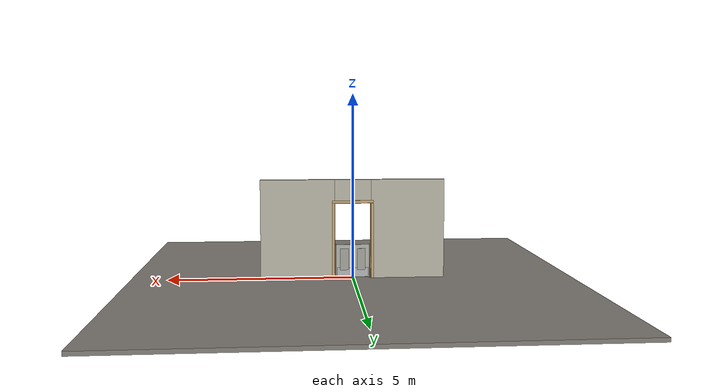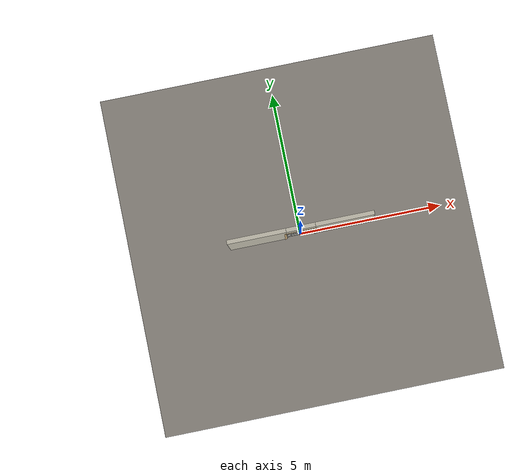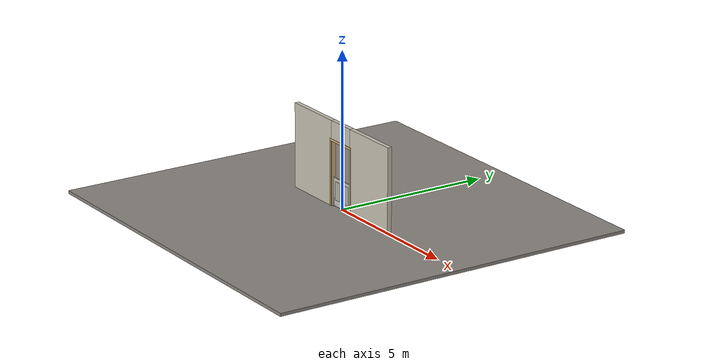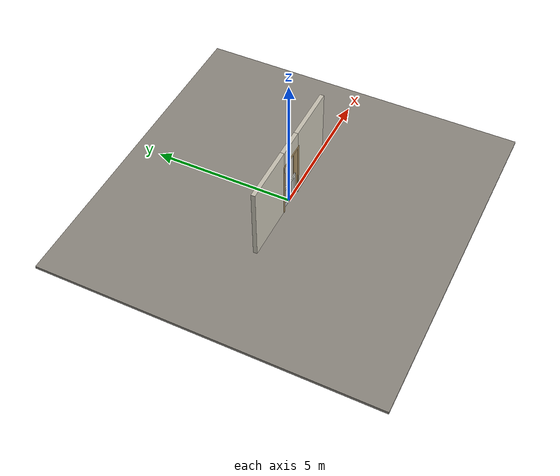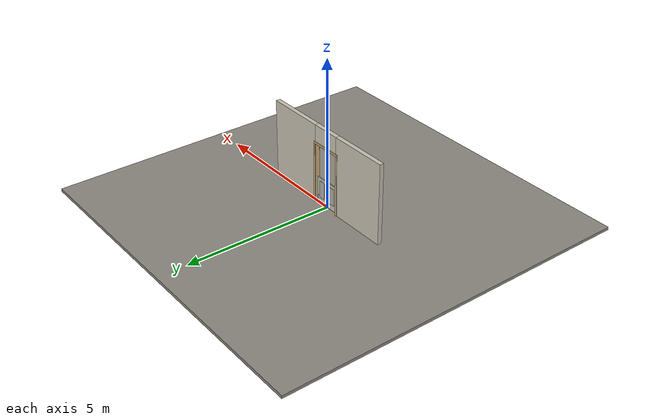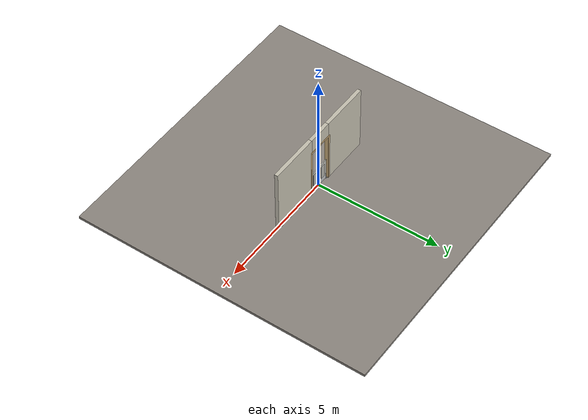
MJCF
<?xml version="1.0" ?>
<mujoco model="db0624_saloon_full">
  <compiler angle="radian" meshdir="../../hardware" texturedir="../../textures" autolimits="true" inertiafromgeom="false"/>
  <option timestep="0.002" integrator="implicitfast" cone="elliptic" impratio="10" noslip_iterations="3">
    <flag multiccd="enable"/>
  </option>
  <size memory="16M"/>
  <default>
    <geom condim="4" solref="0.005 1" solimp="0.95 0.99 0.001"/>
    <joint solreflimit="0.005 1" solimplimit="0.95 0.99 0.001"/>
    <tendon solreflimit="0.005 1"/>
    <equality solref="0.002 1"/>
  </default>
  <visual>
    <headlight ambient="0.4 0.4 0.4" diffuse="0.7 0.7 0.7" specular="0.2 0.2 0.2"/>
    <quality shadowsize="4096"/>
    <map znear="0.01" zfar="60"/>
  </visual>
  <asset>
    <material name="mat_floor" rgba="0.55 0.53 0.5 1" specular="0.2" shininess="0.15" reflectance="0"/>
    <material name="mat_wall" rgba="0.78 0.76 0.7 1" specular="0.2" shininess="0.1" reflectance="0"/>
    <material name="mat_frame" rgba="0.82 0.7 0.5 1" specular="0.2" shininess="0.45" reflectance="0"/>
    <material name="mat_leaf_a" rgba="0.75 0.75 0.72 1" specular="0.2" shininess="0.65" reflectance="0"/>
    <material name="mat_leaf_a_panel" rgba="0.69 0.69 0.662 1" specular="0.2" shininess="0.65" reflectance="0"/>
    <material name="mat_hinge" rgba="0.65 0.66 0.68 1" specular="0.74" shininess="0.5" reflectance="0.36"/>
    <material name="mat_kick" rgba="0.75 0.76 0.77 1" specular="0.8" shininess="0.65" reflectance="0.4"/>
    <material name="mat_leaf_b" rgba="0.75 0.75 0.72 1" specular="0.2" shininess="0.65" reflectance="0"/>
    <material name="mat_leaf_b_panel" rgba="0.69 0.69 0.662 1" specular="0.2" shininess="0.65" reflectance="0"/>
    <texture name="skybox" type="skybox" builtin="gradient" rgb1="0.6 0.7 0.85" rgb2="0.9 0.92 0.95" width="256" height="256"/>
  </asset>
  <worldbody>
    <light name="sun" pos="1.5 -2.5 4" dir="-0.3 0.5 -0.8" directional="true" diffuse="0.8 0.8 0.8" specular="0.3 0.3 0.3" castshadow="true"/>
    <light name="fill" pos="-1.5 2.5 3" dir="0.3 -0.5 -0.7" directional="true" diffuse="0.35 0.35 0.4" castshadow="false"/>
    <camera name="robot_view" pos="0 -2.546875 1.738125" xyaxes="1 0 0 0 0.26963 0.962964" fovy="52"/>
    <camera name="far_view" pos="0 2.546875 1.738125" xyaxes="-1 0 0 0 -0.26963 0.962964" fovy="52"/>
    <camera name="iso" pos="1.935625 -2.139375 2.145625" xyaxes="0.741536 0.670913 0 -0.242917 0.268487 0.932151" fovy="46"/>
    <camera name="detail_handle" pos="0.48 -0.8 1.28" xyaxes="0.97561 0.219512 0 -0.070934 0.315262 0.94635" fovy="38"/>
    <geom name="floor" type="box" size="6 6 0.05" pos="0 0 -0.05" material="mat_floor" group="0" contype="1" conaffinity="1" friction="0.8 0.005 0.0001" density="2400"/>
    <geom name="wall_left" type="box" size="1.00075 0.0725 1.35" pos="-1.49925 0 1.35" material="mat_wall" group="0" contype="1" conaffinity="1" friction="0.6 0.005 0.0001" density="800"/>
    <geom name="wall_right" type="box" size="1.00075 0.0725 1.35" pos="1.49925 0 1.35" material="mat_wall" group="0" contype="1" conaffinity="1" friction="0.6 0.005 0.0001" density="800"/>
    <geom name="wall_header" type="box" size="0.4985 0.0725 0.3155" pos="0 0 2.3845" material="mat_wall" group="0" contype="1" conaffinity="1" friction="0.6 0.005 0.0001" density="800"/>
    <geom name="jamb_hinge" type="box" size="0.0095 0.0725 1.025" pos="-0.489 0 1.025" material="mat_frame" group="0" contype="1" conaffinity="1" friction="0.6 0.005 0.0001" density="400"/>
    <geom name="jamb_strike" type="box" size="0.0095 0.0725 1.025" pos="0.489 0 1.025" material="mat_frame" group="0" contype="1" conaffinity="1" friction="0.6 0.005 0.0001" density="400"/>
    <geom name="stud_strike" type="box" size="0.015 0.0725 1.025" pos="0.5135 0 1.025" material="mat_wall" group="0" contype="1" conaffinity="1" friction="0.6 0.005 0.0001" density="500"/>
    <geom name="jamb_head" type="box" size="0.5135 0.0725 0.0095" pos="0.015 0 2.0595" material="mat_frame" group="0" contype="1" conaffinity="1" friction="0.6 0.005 0.0001" density="400"/>
    <geom name="head_stud" type="box" size="0.5135 0.0725 0.015" pos="0.015 0 2.084" material="mat_wall" group="0" contype="1" conaffinity="1" friction="0.6 0.005 0.0001" density="500"/>
    <geom name="casing_l_n" type="box" size="0.035 0.008 1.0345" pos="-0.5285 -0.0805 1.025" material="mat_frame" group="2" contype="0" conaffinity="0" density="400"/>
    <geom name="casing_r_n" type="box" size="0.035 0.008 1.0345" pos="0.5285 -0.0805 1.025" material="mat_frame" group="2" contype="0" conaffinity="0" density="400"/>
    <geom name="casing_h_n" type="box" size="0.5635 0.008 0.035" pos="0 -0.0805 2.099" material="mat_frame" group="2" contype="0" conaffinity="0" density="400"/>
    <geom name="casing_l_p" type="box" size="0.035 0.008 1.0345" pos="-0.5285 0.0805 1.025" material="mat_frame" group="2" contype="0" conaffinity="0" density="400"/>
    <geom name="casing_r_p" type="box" size="0.035 0.008 1.0345" pos="0.5285 0.0805 1.025" material="mat_frame" group="2" contype="0" conaffinity="0" density="400"/>
    <geom name="casing_h_p" type="box" size="0.5635 0.008 0.035" pos="0 0.0805 2.099" material="mat_frame" group="2" contype="0" conaffinity="0" density="400"/>
    <geom name="pivot_bottom_socket" type="box" size="0.035 0.035 0.0115" pos="-0.456 0 0.0015" material="mat_hinge" group="1" contype="0" conaffinity="0" density="7850"/>
    <geom name="pivot_bottom_socket_2" type="box" size="0.035 0.035 0.0115" pos="0.456 0 0.0015" material="mat_hinge" group="1" contype="0" conaffinity="0" density="7850"/>
    <site name="approach_point" pos="0 -1.5 0" quat="1 0 0 0" size="0.05" rgba="0.2 0.9 0.2 0.5" group="4"/>
    <site name="goal_point" pos="0 1.5 0" quat="1 0 0 0" size="0.05" rgba="0.2 0.9 0.2 0.5" group="4"/>
    <site name="door_plane_center" pos="0 0 1.025" quat="1 0 0 0" size="0.02" rgba="0.2 0.9 0.2 0.5" group="4"/>
    <body name="leaf_a" pos="-0.4795 0 0">
      <inertial pos="0.247723 0 0.430323" mass="20.82" quat="0.500122 0.500122 0.499878 -0.499878" diaginertia="0.346765935 1.477572015 1.819025656"/>
      <joint name="leaf_a_hinge" type="hinge" axis="0 0 1" pos="0.0235 0 0" limited="true" range="-1.570796 1.570796" damping="0.756665" frictionloss="1.327229" stiffness="5.2" springref="0" armature="0.02"/>
      <geom name="leaf_a_slab" type="box" size="0.225 0.0175 0.45" pos="0.2485 0 0.465" material="mat_leaf_a" group="0" contype="1" conaffinity="1" friction="0.35 0.005 0.0001" density="1"/>
      <geom name="leaf_a_panel_0_n" type="box" size="0.115 0.003 0.295" pos="0.2485 -0.0205 0.51" material="mat_leaf_a_panel" group="1" contype="0" conaffinity="0" density="1"/>
      <geom name="leaf_a_panel_0_p" type="box" size="0.115 0.003 0.295" pos="0.2485 0.0205 0.51" material="mat_leaf_a_panel" group="1" contype="0" conaffinity="0" density="1"/>
      <geom name="pivot_bottom" type="cylinder" size="0.014 0.004" pos="0.0235 0 0.01" material="mat_hinge" group="1" contype="0" conaffinity="0" density="7850"/>
      <geom name="pivot_top" type="cylinder" size="0.014 0.004" pos="0.0235 0 0.919" material="mat_hinge" group="1" contype="0" conaffinity="0" density="7850"/>
      <geom name="leaf_a_kick_n" type="box" size="0.195 0.0008 0.125" pos="0.2485 -0.0183 0.15" material="mat_kick" group="2" contype="0" conaffinity="0" density="7900"/>
      <geom name="leaf_a_kick_p" type="box" size="0.195 0.0008 0.125" pos="0.2485 0.0183 0.15" material="mat_kick" group="2" contype="0" conaffinity="0" density="7900"/>
      <site name="leaf_a_push_site" pos="0.361 -0.0175 0.555" quat="1 0 0 0" size="0.015" rgba="0.2 0.9 0.2 0.5" group="4"/>
    </body>
    <body name="leaf_b" pos="0.4795 0 0">
      <inertial pos="-0.247723 0 0.430323" mass="20.82" quat="0.500122 -0.500122 -0.499878 -0.499878" diaginertia="0.346765935 1.477572015 1.819025656"/>
      <joint name="leaf_b_hinge" type="hinge" axis="0 0 -1" pos="-0.0235 0 0" limited="true" range="-1.570796 1.570796" damping="0.756665" frictionloss="1.327229" stiffness="5.2" springref="0" armature="0.02"/>
      <geom name="leaf_b_slab" type="box" size="0.225 0.0175 0.45" pos="-0.2485 0 0.465" material="mat_leaf_b" group="0" contype="1" conaffinity="1" friction="0.35 0.005 0.0001" density="1"/>
      <geom name="leaf_b_panel_0_n" type="box" size="0.115 0.003 0.295" pos="-0.2485 -0.0205 0.51" material="mat_leaf_b_panel" group="1" contype="0" conaffinity="0" density="1"/>
      <geom name="leaf_b_panel_0_p" type="box" size="0.115 0.003 0.295" pos="-0.2485 0.0205 0.51" material="mat_leaf_b_panel" group="1" contype="0" conaffinity="0" density="1"/>
      <geom name="pivot_bottom_2" type="cylinder" size="0.014 0.004" pos="-0.0235 0 0.01" material="mat_hinge" group="1" contype="0" conaffinity="0" density="7850"/>
      <geom name="pivot_top_2" type="cylinder" size="0.014 0.004" pos="-0.0235 0 0.919" material="mat_hinge" group="1" contype="0" conaffinity="0" density="7850"/>
      <geom name="leaf_b_kick_n" type="box" size="0.195 0.0008 0.125" pos="-0.2485 -0.0183 0.15" material="mat_kick" group="2" contype="0" conaffinity="0" density="7900"/>
      <geom name="leaf_b_kick_p" type="box" size="0.195 0.0008 0.125" pos="-0.2485 0.0183 0.15" material="mat_kick" group="2" contype="0" conaffinity="0" density="7900"/>
      <site name="leaf_b_push_site" pos="-0.361 -0.0175 0.555" quat="1 0 0 0" size="0.015" rgba="0.2 0.9 0.2 0.5" group="4"/>
    </body>
  </worldbody>
  <sensor>
    <jointpos name="leaf_a_hinge_pos" joint="leaf_a_hinge"/>
    <jointvel name="leaf_a_hinge_vel" joint="leaf_a_hinge"/>
    <jointpos name="leaf_b_hinge_pos" joint="leaf_b_hinge"/>
    <jointvel name="leaf_b_hinge_vel" joint="leaf_b_hinge"/>
  </sensor>
</mujoco>
